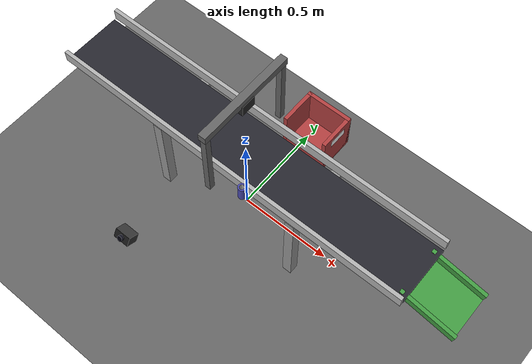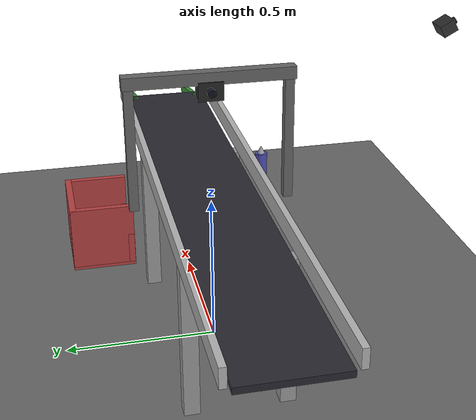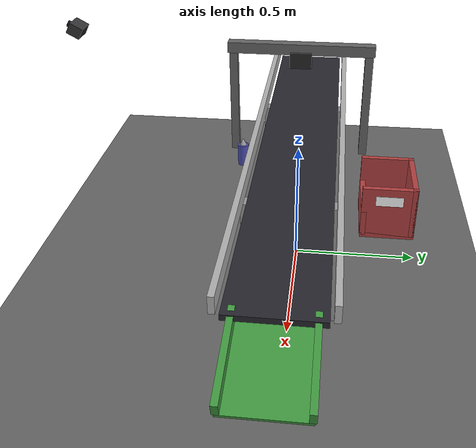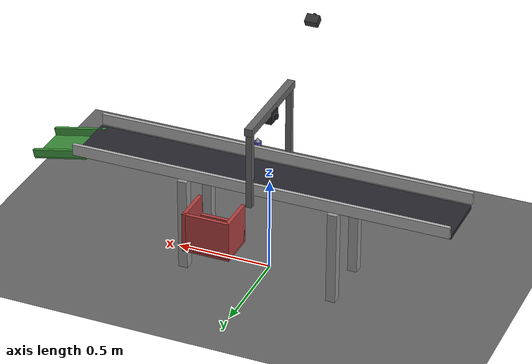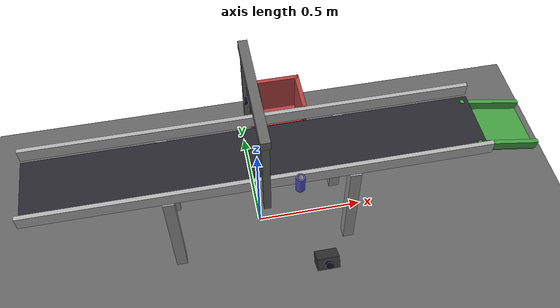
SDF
<?xml version="1.0" ?>
<sdf version="1.9">
  <world name="cylinder_inspection">

    <!-- ==================== PHYSICS ==================== -->
    <!-- Reduced from 1000Hz to 100Hz - sufficient for visual inspection demo -->
    <physics name="10ms" type="ignored">
      <max_step_size>0.01</max_step_size>
      <real_time_factor>1.0</real_time_factor>
      <real_time_update_rate>100</real_time_update_rate>
    </physics>

    <!-- Required plugins -->
    <plugin filename="gz-sim-physics-system" name="gz::sim::systems::Physics"/>
    <plugin filename="gz-sim-scene-broadcaster-system" name="gz::sim::systems::SceneBroadcaster"/>
    <plugin filename="gz-sim-user-commands-system" name="gz::sim::systems::UserCommands"/>
    <plugin filename="gz-sim-sensors-system" name="gz::sim::systems::Sensors">
      <render_engine>ogre2</render_engine>
    </plugin>
    <plugin filename="gz-sim-contact-system" name="gz::sim::systems::Contact"/>

    <!-- ==================== SCENE ==================== -->
    <scene>
      <ambient>0.6 0.6 0.6 1</ambient>
      <background>0.2 0.2 0.25 1</background>
      <shadows>true</shadows>
    </scene>

    <!-- ==================== LIGHTING ==================== -->
    <!-- Bright overhead lighting for consistent inspection -->
    <light type="directional" name="sun">
      <cast_shadows>true</cast_shadows>
      <pose>0 0 10 0 0 0</pose>
      <diffuse>0.9 0.9 0.9 1</diffuse>
      <specular>0.3 0.3 0.3 1</specular>
      <direction>-0.2 0.1 -1.0</direction>
    </light>

    <!-- Fill light to reduce shadows -->
    <light type="directional" name="fill_light">
      <cast_shadows>false</cast_shadows>
      <pose>0 0 8 0 0 0</pose>
      <diffuse>0.4 0.4 0.4 1</diffuse>
      <specular>0.1 0.1 0.1 1</specular>
      <direction>0.3 -0.2 -0.8</direction>
    </light>

    <!-- Inspection area spot light -->
    <light type="spot" name="inspection_light">
      <cast_shadows>false</cast_shadows>
      <pose>0 0 0.8 0 0 0</pose>
      <diffuse>1.0 1.0 1.0 1</diffuse>
      <specular>0.5 0.5 0.5 1</specular>
      <direction>0 0 -1</direction>
      <spot>
        <inner_angle>0.5</inner_angle>
        <outer_angle>0.8</outer_angle>
        <falloff>1.0</falloff>
      </spot>
    </light>

    <!-- ==================== GROUND ==================== -->
    <model name="ground_plane">
      <static>true</static>
      <link name="link">
        <collision name="collision">
          <geometry>
            <plane>
              <normal>0 0 1</normal>
              <size>10 10</size>
            </plane>
          </geometry>
        </collision>
        <visual name="visual">
          <geometry>
            <plane>
              <normal>0 0 1</normal>
              <size>10 10</size>
            </plane>
          </geometry>
          <material>
            <ambient>0.3 0.3 0.3 1</ambient>
            <diffuse>0.4 0.4 0.4 1</diffuse>
          </material>
        </visual>
      </link>
    </model>

    <!-- ==================== CONVEYOR STRUCTURE ==================== -->
    <!-- Main conveyor frame/table -->
    <model name="conveyor_frame">
      <static>true</static>
      <pose>0 0 0 0 0 0</pose>

      <!-- Support legs -->
      <link name="leg_1">
        <pose>-0.4 -0.15 0.25 0 0 0</pose>
        <visual name="visual">
          <geometry><box><size>0.05 0.05 0.5</size></box></geometry>
          <material>
            <ambient>0.5 0.5 0.5 1</ambient>
            <diffuse>0.6 0.6 0.6 1</diffuse>
          </material>
        </visual>
        <collision name="collision">
          <geometry><box><size>0.05 0.05 0.5</size></box></geometry>
        </collision>
      </link>

      <link name="leg_2">
        <pose>-0.4 0.15 0.25 0 0 0</pose>
        <visual name="visual">
          <geometry><box><size>0.05 0.05 0.5</size></box></geometry>
          <material>
            <ambient>0.5 0.5 0.5 1</ambient>
            <diffuse>0.6 0.6 0.6 1</diffuse>
          </material>
        </visual>
        <collision name="collision">
          <geometry><box><size>0.05 0.05 0.5</size></box></geometry>
        </collision>
      </link>

      <link name="leg_3">
        <pose>0.4 -0.15 0.25 0 0 0</pose>
        <visual name="visual">
          <geometry><box><size>0.05 0.05 0.5</size></box></geometry>
          <material>
            <ambient>0.5 0.5 0.5 1</ambient>
            <diffuse>0.6 0.6 0.6 1</diffuse>
          </material>
        </visual>
        <collision name="collision">
          <geometry><box><size>0.05 0.05 0.5</size></box></geometry>
        </collision>
      </link>

      <link name="leg_4">
        <pose>0.4 0.15 0.25 0 0 0</pose>
        <visual name="visual">
          <geometry><box><size>0.05 0.05 0.5</size></box></geometry>
          <material>
            <ambient>0.5 0.5 0.5 1</ambient>
            <diffuse>0.6 0.6 0.6 1</diffuse>
          </material>
        </visual>
        <collision name="collision">
          <geometry><box><size>0.05 0.05 0.5</size></box></geometry>
        </collision>
      </link>

      <!-- Conveyor belt surface -->
      <link name="belt">
        <pose>0 0 0.51 0 0 0</pose>
        <visual name="visual">
          <geometry><box><size>2.0 0.3 0.02</size></box></geometry>
          <material>
            <ambient>0.1 0.1 0.12 1</ambient>
            <diffuse>0.15 0.15 0.18 1</diffuse>
          </material>
        </visual>
        <collision name="collision">
          <geometry><box><size>2.0 0.3 0.02</size></box></geometry>
          <surface>
            <friction>
              <ode>
                <mu>1.0</mu>
                <mu2>1.0</mu2>
              </ode>
            </friction>
          </surface>
        </collision>
      </link>

      <!-- Side rails -->
      <link name="rail_left">
        <pose>0 0.17 0.55 0 0 0</pose>
        <visual name="visual">
          <geometry><box><size>2.0 0.02 0.06</size></box></geometry>
          <material>
            <ambient>0.6 0.6 0.6 1</ambient>
            <diffuse>0.7 0.7 0.7 1</diffuse>
          </material>
        </visual>
        <collision name="collision">
          <geometry><box><size>2.0 0.02 0.06</size></box></geometry>
        </collision>
      </link>

      <link name="rail_right">
        <pose>0 -0.17 0.55 0 0 0</pose>
        <visual name="visual">
          <geometry><box><size>2.0 0.02 0.06</size></box></geometry>
          <material>
            <ambient>0.6 0.6 0.6 1</ambient>
            <diffuse>0.7 0.7 0.7 1</diffuse>
          </material>
        </visual>
        <collision name="collision">
          <geometry><box><size>2.0 0.02 0.06</size></box></geometry>
        </collision>
      </link>

      <!-- Camera mount (gantry over conveyor) -->
      <link name="camera_mount_left">
        <pose>0 0.25 0.7 0 0 0</pose>
        <visual name="visual">
          <geometry><box><size>0.03 0.03 0.4</size></box></geometry>
          <material>
            <ambient>0.3 0.3 0.3 1</ambient>
            <diffuse>0.4 0.4 0.4 1</diffuse>
          </material>
        </visual>
      </link>

      <link name="camera_mount_right">
        <pose>0 -0.25 0.7 0 0 0</pose>
        <visual name="visual">
          <geometry><box><size>0.03 0.03 0.4</size></box></geometry>
          <material>
            <ambient>0.3 0.3 0.3 1</ambient>
            <diffuse>0.4 0.4 0.4 1</diffuse>
          </material>
        </visual>
      </link>

      <link name="camera_crossbar">
        <pose>0 0 0.92 0 0 0</pose>
        <visual name="visual">
          <geometry><box><size>0.04 0.54 0.04</size></box></geometry>
          <material>
            <ambient>0.3 0.3 0.3 1</ambient>
            <diffuse>0.4 0.4 0.4 1</diffuse>
          </material>
        </visual>
      </link>
    </model>

    <!-- ==================== INSPECTION CAMERA ==================== -->
    <model name="inspection_camera">
      <static>true</static>
      <pose>0 0 0.88 0 1.5708 0</pose>  <!-- Pointing straight down -->

      <link name="camera_body">
        <visual name="camera_housing">
          <geometry>
            <box><size>0.06 0.08 0.05</size></box>
          </geometry>
          <material>
            <ambient>0.1 0.1 0.1 1</ambient>
            <diffuse>0.15 0.15 0.15 1</diffuse>
          </material>
        </visual>

        <visual name="lens">
          <pose>0 0 -0.03 0 0 0</pose>
          <geometry>
            <cylinder>
              <radius>0.015</radius>
              <length>0.02</length>
            </cylinder>
          </geometry>
          <material>
            <ambient>0.02 0.02 0.05 1</ambient>
            <diffuse>0.05 0.05 0.1 1</diffuse>
          </material>
        </visual>

        <sensor name="inspection_cam" type="camera">
          <pose>0 0 -0.04 0 0 0</pose>
          <always_on>1</always_on>
          <update_rate>15</update_rate>
          <topic>inspection_camera</topic>
          <camera>
            <horizontal_fov>1.047</horizontal_fov>  <!-- 60 degrees -->
            <image>
              <width>640</width>
              <height>480</height>
              <format>R8G8B8</format>
            </image>
            <clip>
              <near>0.1</near>
              <far>5.0</far>
            </clip>
          </camera>
        </sensor>
      </link>
    </model>

    <!-- ==================== OVERVIEW CAMERA ==================== -->
    <!-- Elevated view of the entire work cell, positioned so cans enter frame already on belt -->
    <model name="overview_camera">
      <static>true</static>
      <!-- Position: side view, centered on inspection/rejection zone -->
      <!-- Orientation: looking toward belt from the side -->
      <!-- Roll=0, Pitch=0.5 (tilt down ~29°), Yaw=1.57 (90°, facing +y toward belt) -->
      <pose>0.1 -0.8 1.0 0 0.5 1.57</pose>

      <link name="camera_body">
        <visual name="camera_housing">
          <geometry>
            <box><size>0.05 0.07 0.04</size></box>
          </geometry>
          <material>
            <ambient>0.15 0.15 0.15 1</ambient>
            <diffuse>0.2 0.2 0.2 1</diffuse>
          </material>
        </visual>

        <visual name="lens">
          <pose>-0.03 0 0 0 1.5708 0</pose>
          <geometry>
            <cylinder>
              <radius>0.012</radius>
              <length>0.015</length>
            </cylinder>
          </geometry>
          <material>
            <ambient>0.02 0.02 0.05 1</ambient>
            <diffuse>0.05 0.05 0.1 1</diffuse>
          </material>
        </visual>

        <sensor name="overview_cam" type="camera">
          <pose>-0.03 0 0 0 0 0</pose>
          <always_on>1</always_on>
          <update_rate>15</update_rate>
          <topic>overview_camera</topic>
          <camera>
            <horizontal_fov>1.22</horizontal_fov>  <!-- ~70 degrees -->
            <image>
              <width>800</width>
              <height>600</height>
              <format>R8G8B8</format>
            </image>
            <clip>
              <near>0.1</near>
              <far>10.0</far>
            </clip>
          </camera>
        </sensor>
      </link>
    </model>

    <!-- ==================== AIR JET REJECTOR ==================== -->
    <!-- Visual representation of air jet nozzle -->
    <model name="air_jet_rejector">
      <static>true</static>
      <pose>0.15 -0.2 0.55 0 0 1.5708</pose>  <!-- On right side, pointing left -->

      <link name="nozzle">
        <visual name="housing">
          <geometry>
            <cylinder>
              <radius>0.02</radius>
              <length>0.08</length>
            </cylinder>
          </geometry>
          <material>
            <ambient>0.2 0.2 0.6 1</ambient>
            <diffuse>0.3 0.3 0.7 1</diffuse>
          </material>
        </visual>

        <visual name="nozzle_tip">
          <pose>0 0 0.05 0 0 0</pose>
          <geometry>
            <cone>
              <radius>0.015</radius>
              <length>0.03</length>
            </cone>
          </geometry>
          <material>
            <ambient>0.5 0.5 0.5 1</ambient>
            <diffuse>0.6 0.6 0.6 1</diffuse>
          </material>
        </visual>
      </link>
    </model>

    <!-- ==================== REJECT BIN ==================== -->
    <model name="reject_bin">
      <static>true</static>
      <pose>0.15 0.35 0.3 0 0 0</pose>

      <!-- Bin walls (open top box) -->
      <link name="bin">
        <!-- Bottom -->
        <visual name="bottom">
          <pose>0 0 0 0 0 0</pose>
          <geometry><box><size>0.25 0.2 0.02</size></box></geometry>
          <material>
            <ambient>0.6 0.2 0.2 1</ambient>
            <diffuse>0.7 0.25 0.25 1</diffuse>
          </material>
        </visual>
        <collision name="bottom_col">
          <pose>0 0 0 0 0 0</pose>
          <geometry><box><size>0.25 0.2 0.02</size></box></geometry>
        </collision>

        <!-- Front wall -->
        <visual name="front">
          <pose>0.115 0 0.1 0 0 0</pose>
          <geometry><box><size>0.02 0.2 0.2</size></box></geometry>
          <material>
            <ambient>0.6 0.2 0.2 1</ambient>
            <diffuse>0.7 0.25 0.25 1</diffuse>
          </material>
        </visual>
        <collision name="front_col">
          <pose>0.115 0 0.1 0 0 0</pose>
          <geometry><box><size>0.02 0.2 0.2</size></box></geometry>
        </collision>

        <!-- Back wall -->
        <visual name="back">
          <pose>-0.115 0 0.1 0 0 0</pose>
          <geometry><box><size>0.02 0.2 0.2</size></box></geometry>
          <material>
            <ambient>0.6 0.2 0.2 1</ambient>
            <diffuse>0.7 0.25 0.25 1</diffuse>
          </material>
        </visual>
        <collision name="back_col">
          <pose>-0.115 0 0.1 0 0 0</pose>
          <geometry><box><size>0.02 0.2 0.2</size></box></geometry>
        </collision>

        <!-- Left wall -->
        <visual name="left">
          <pose>0 0.09 0.1 0 0 0</pose>
          <geometry><box><size>0.25 0.02 0.2</size></box></geometry>
          <material>
            <ambient>0.6 0.2 0.2 1</ambient>
            <diffuse>0.7 0.25 0.25 1</diffuse>
          </material>
        </visual>
        <collision name="left_col">
          <pose>0 0.09 0.1 0 0 0</pose>
          <geometry><box><size>0.25 0.02 0.2</size></box></geometry>
        </collision>

        <!-- Right wall (lower, acts as chute entry) -->
        <visual name="right">
          <pose>0 -0.09 0.05 0 0 0</pose>
          <geometry><box><size>0.25 0.02 0.1</size></box></geometry>
          <material>
            <ambient>0.6 0.2 0.2 1</ambient>
            <diffuse>0.7 0.25 0.25 1</diffuse>
          </material>
        </visual>
        <collision name="right_col">
          <pose>0 -0.09 0.05 0 0 0</pose>
          <geometry><box><size>0.25 0.02 0.1</size></box></geometry>
        </collision>

        <!-- Label -->
        <visual name="label">
          <pose>0.125 0 0.15 0 0 1.5708</pose>
          <geometry><box><size>0.1 0.001 0.04</size></box></geometry>
          <material>
            <ambient>0.9 0.9 0.9 1</ambient>
            <diffuse>1.0 1.0 1.0 1</diffuse>
          </material>
        </visual>
      </link>
    </model>

    <!-- ==================== OUTPUT CHUTE ==================== -->
    <model name="output_chute">
      <static>true</static>
      <pose>1.1 0 0.45 0 0.2 0</pose>  <!-- Slightly angled down, at belt end -->

      <link name="chute">
        <!-- Bottom surface -->
        <visual name="surface">
          <geometry><box><size>0.3 0.25 0.01</size></box></geometry>
          <material>
            <ambient>0.2 0.5 0.2 1</ambient>
            <diffuse>0.25 0.6 0.25 1</diffuse>
          </material>
        </visual>
        <collision name="surface_col">
          <geometry><box><size>0.3 0.25 0.01</size></box></geometry>
        </collision>

        <!-- Side rails -->
        <visual name="rail_left">
          <pose>0 0.12 0.025 0 0 0</pose>
          <geometry><box><size>0.3 0.02 0.04</size></box></geometry>
          <material>
            <ambient>0.2 0.5 0.2 1</ambient>
            <diffuse>0.25 0.6 0.25 1</diffuse>
          </material>
        </visual>
        <collision name="rail_left_col">
          <pose>0 0.12 0.025 0 0 0</pose>
          <geometry><box><size>0.3 0.02 0.04</size></box></geometry>
        </collision>

        <visual name="rail_right">
          <pose>0 -0.12 0.025 0 0 0</pose>
          <geometry><box><size>0.3 0.02 0.04</size></box></geometry>
          <material>
            <ambient>0.2 0.5 0.2 1</ambient>
            <diffuse>0.25 0.6 0.25 1</diffuse>
          </material>
        </visual>
        <collision name="rail_right_col">
          <pose>0 -0.12 0.025 0 0 0</pose>
          <geometry><box><size>0.3 0.02 0.04</size></box></geometry>
        </collision>
      </link>
    </model>

    <!-- ==================== DYNAMIC CANS ==================== -->
    <!-- Cans are spawned dynamically by can_spawner.py -->
    <!-- About 1 in 10 cans will be dented -->
    <!-- The spawner moves cans along the belt and removes them at the end -->

  </world>
</sdf>
